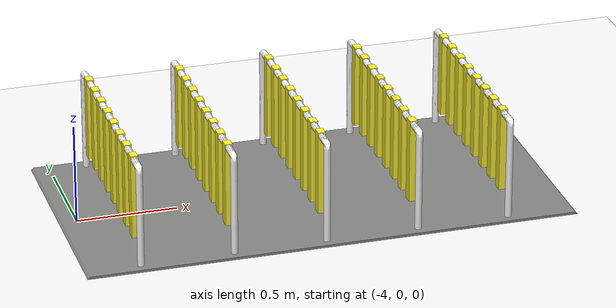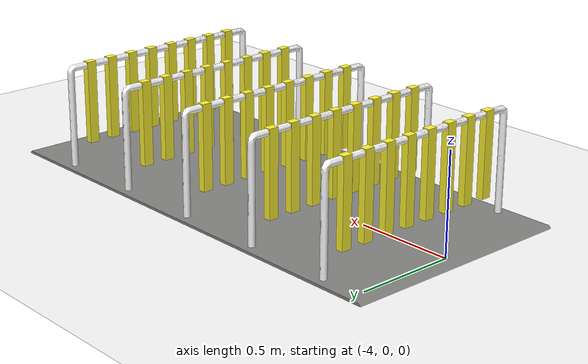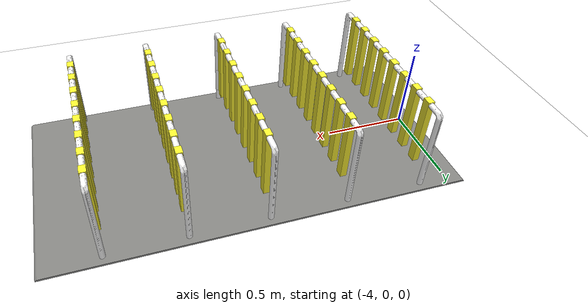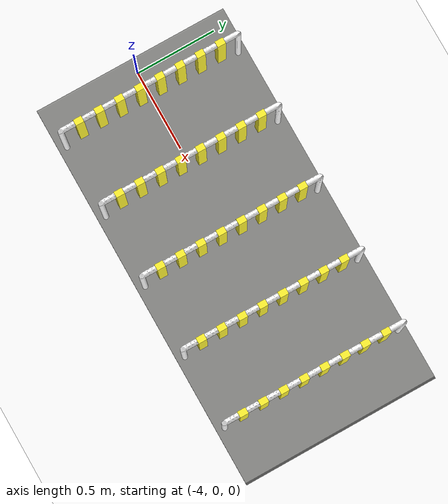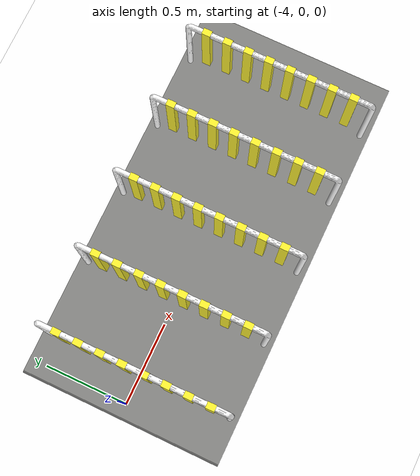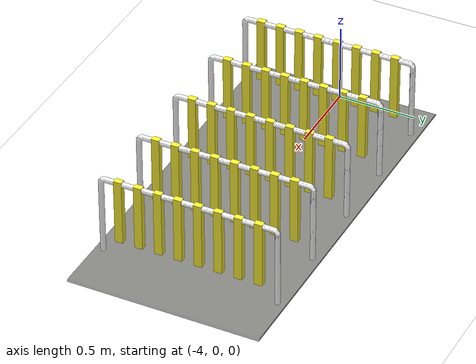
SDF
<sdf version="1.10">
 <world name="cfr_obstacle_course">
  <model name="ground">
   <static>true</static>
   <pose>0.005 -4.540 0 0 0 0</pose>
   <link name="link">
    <collision name="collision">
     <geometry><plane><normal>0 0 1</normal><size>30 24</size></plane></geometry>
     <surface>
      <friction>
       <ode><mu>50</mu></ode>
       <bullet><friction>1</friction><rolling_friction>0.001</rolling_friction></bullet>
      </friction>
     </surface>
    </collision>
    <visual name="visual">
     <geometry><plane><normal>0 0 1</normal><size>30 24</size></plane></geometry>
     <material>
      <diffuse>1 1 1 1</diffuse>
      <pbr>
       <metal>
        <albedo_map>model://cfr_arduino_bridge/materials/asphalt_obstacle.png</albedo_map>
        <roughness>0.95</roughness>
        <metalness>0</metalness>
       </metal>
      </pbr>
     </material>
    </visual>
   </link>
  </model>
  <model name="car_wash">
   <static>true</static>
   <link name="link">
    <visual name="base_visual">
     <pose>-2.8703 -0.0002 0.0000 0.0000 0.0000 0.0000</pose>
     <geometry><mesh><uri>model://cfr_arduino_bridge/meshes/car_wash_base.stl</uri></mesh></geometry>
     <material><diffuse>0.52 0.52 0.51 1</diffuse></material>
    </visual>
    <collision name="base_collision">
     <pose>-2.8703 -0.0002 0.0065 0.0000 0.0000 0.0000</pose>
     <geometry><box><size>2.4384 1.2192 0.0130</size></box></geometry>
    </collision>
    <visual name="arch_0_visual">
     <pose>-3.8198 -0.0002 0.0000 0.0000 0.0000 0.0000</pose>
     <geometry><mesh><uri>model://cfr_arduino_bridge/meshes/car_wash_arch.stl</uri></mesh></geometry>
     <material><diffuse>1 1 1 1</diffuse></material>
    </visual>
    <collision name="upright_0_-1_collision">
     <pose>-3.8198 -0.5757 0.2100 0.0000 0.0000 0.0000</pose>
     <geometry><cylinder><radius>0.0170</radius><length>0.4200</length></cylinder></geometry>
    </collision>
    <collision name="upright_0_1_collision">
     <pose>-3.8198 0.5753 0.2100 0.0000 0.0000 0.0000</pose>
     <geometry><cylinder><radius>0.0170</radius><length>0.4200</length></cylinder></geometry>
    </collision>
    <visual name="strip_0_0_visual">
     <pose>-3.8198 -0.4447 0.3275 0.0000 0.0000 0.0000</pose>
     <geometry><box><size>0.0370 0.0510 0.4250</size></box></geometry>
     <material><diffuse>1.0 0.96 0.19 1</diffuse></material>
    </visual>
    <visual name="strip_0_1_visual">
     <pose>-3.8198 -0.3177 0.3275 0.0000 0.0000 0.0000</pose>
     <geometry><box><size>0.0370 0.0510 0.4250</size></box></geometry>
     <material><diffuse>1.0 0.96 0.19 1</diffuse></material>
    </visual>
    <visual name="strip_0_2_visual">
     <pose>-3.8198 -0.1907 0.3275 0.0000 0.0000 0.0000</pose>
     <geometry><box><size>0.0370 0.0510 0.4250</size></box></geometry>
     <material><diffuse>1.0 0.96 0.19 1</diffuse></material>
    </visual>
    <visual name="strip_0_3_visual">
     <pose>-3.8198 -0.0637 0.3275 0.0000 0.0000 0.0000</pose>
     <geometry><box><size>0.0370 0.0510 0.4250</size></box></geometry>
     <material><diffuse>1.0 0.96 0.19 1</diffuse></material>
    </visual>
    <visual name="strip_0_4_visual">
     <pose>-3.8198 0.0633 0.3275 0.0000 0.0000 0.0000</pose>
     <geometry><box><size>0.0370 0.0510 0.4250</size></box></geometry>
     <material><diffuse>1.0 0.96 0.19 1</diffuse></material>
    </visual>
    <visual name="strip_0_5_visual">
     <pose>-3.8198 0.1903 0.3275 0.0000 0.0000 0.0000</pose>
     <geometry><box><size>0.0370 0.0510 0.4250</size></box></geometry>
     <material><diffuse>1.0 0.96 0.19 1</diffuse></material>
    </visual>
    <visual name="strip_0_6_visual">
     <pose>-3.8198 0.3173 0.3275 0.0000 0.0000 0.0000</pose>
     <geometry><box><size>0.0370 0.0510 0.4250</size></box></geometry>
     <material><diffuse>1.0 0.96 0.19 1</diffuse></material>
    </visual>
    <visual name="strip_0_7_visual">
     <pose>-3.8198 0.4443 0.3275 0.0000 0.0000 0.0000</pose>
     <geometry><box><size>0.0370 0.0510 0.4250</size></box></geometry>
     <material><diffuse>1.0 0.96 0.19 1</diffuse></material>
    </visual>
    <visual name="arch_1_visual">
     <pose>-3.3626 -0.0002 0.0000 0.0000 0.0000 0.0000</pose>
     <geometry><mesh><uri>model://cfr_arduino_bridge/meshes/car_wash_arch.stl</uri></mesh></geometry>
     <material><diffuse>1 1 1 1</diffuse></material>
    </visual>
    <collision name="upright_1_-1_collision">
     <pose>-3.3626 -0.5757 0.2100 0.0000 0.0000 0.0000</pose>
     <geometry><cylinder><radius>0.0170</radius><length>0.4200</length></cylinder></geometry>
    </collision>
    <collision name="upright_1_1_collision">
     <pose>-3.3626 0.5753 0.2100 0.0000 0.0000 0.0000</pose>
     <geometry><cylinder><radius>0.0170</radius><length>0.4200</length></cylinder></geometry>
    </collision>
    <visual name="strip_1_0_visual">
     <pose>-3.3626 -0.4447 0.3275 0.0000 0.0000 0.0000</pose>
     <geometry><box><size>0.0370 0.0510 0.4250</size></box></geometry>
     <material><diffuse>1.0 0.96 0.19 1</diffuse></material>
    </visual>
    <visual name="strip_1_1_visual">
     <pose>-3.3626 -0.3177 0.3275 0.0000 0.0000 0.0000</pose>
     <geometry><box><size>0.0370 0.0510 0.4250</size></box></geometry>
     <material><diffuse>1.0 0.96 0.19 1</diffuse></material>
    </visual>
    <visual name="strip_1_2_visual">
     <pose>-3.3626 -0.1907 0.3275 0.0000 0.0000 0.0000</pose>
     <geometry><box><size>0.0370 0.0510 0.4250</size></box></geometry>
     <material><diffuse>1.0 0.96 0.19 1</diffuse></material>
    </visual>
    <visual name="strip_1_3_visual">
     <pose>-3.3626 -0.0637 0.3275 0.0000 0.0000 0.0000</pose>
     <geometry><box><size>0.0370 0.0510 0.4250</size></box></geometry>
     <material><diffuse>1.0 0.96 0.19 1</diffuse></material>
    </visual>
    <visual name="strip_1_4_visual">
     <pose>-3.3626 0.0633 0.3275 0.0000 0.0000 0.0000</pose>
     <geometry><box><size>0.0370 0.0510 0.4250</size></box></geometry>
     <material><diffuse>1.0 0.96 0.19 1</diffuse></material>
    </visual>
    <visual name="strip_1_5_visual">
     <pose>-3.3626 0.1903 0.3275 0.0000 0.0000 0.0000</pose>
     <geometry><box><size>0.0370 0.0510 0.4250</size></box></geometry>
     <material><diffuse>1.0 0.96 0.19 1</diffuse></material>
    </visual>
    <visual name="strip_1_6_visual">
     <pose>-3.3626 0.3173 0.3275 0.0000 0.0000 0.0000</pose>
     <geometry><box><size>0.0370 0.0510 0.4250</size></box></geometry>
     <material><diffuse>1.0 0.96 0.19 1</diffuse></material>
    </visual>
    <visual name="strip_1_7_visual">
     <pose>-3.3626 0.4443 0.3275 0.0000 0.0000 0.0000</pose>
     <geometry><box><size>0.0370 0.0510 0.4250</size></box></geometry>
     <material><diffuse>1.0 0.96 0.19 1</diffuse></material>
    </visual>
    <visual name="arch_2_visual">
     <pose>-2.9054 -0.0002 0.0000 0.0000 0.0000 0.0000</pose>
     <geometry><mesh><uri>model://cfr_arduino_bridge/meshes/car_wash_arch.stl</uri></mesh></geometry>
     <material><diffuse>1 1 1 1</diffuse></material>
    </visual>
    <collision name="upright_2_-1_collision">
     <pose>-2.9054 -0.5757 0.2100 0.0000 0.0000 0.0000</pose>
     <geometry><cylinder><radius>0.0170</radius><length>0.4200</length></cylinder></geometry>
    </collision>
    <collision name="upright_2_1_collision">
     <pose>-2.9054 0.5753 0.2100 0.0000 0.0000 0.0000</pose>
     <geometry><cylinder><radius>0.0170</radius><length>0.4200</length></cylinder></geometry>
    </collision>
    <visual name="strip_2_0_visual">
     <pose>-2.9054 -0.4447 0.3275 0.0000 0.0000 0.0000</pose>
     <geometry><box><size>0.0370 0.0510 0.4250</size></box></geometry>
     <material><diffuse>1.0 0.96 0.19 1</diffuse></material>
    </visual>
    <visual name="strip_2_1_visual">
     <pose>-2.9054 -0.3177 0.3275 0.0000 0.0000 0.0000</pose>
     <geometry><box><size>0.0370 0.0510 0.4250</size></box></geometry>
     <material><diffuse>1.0 0.96 0.19 1</diffuse></material>
    </visual>
    <visual name="strip_2_2_visual">
     <pose>-2.9054 -0.1907 0.3275 0.0000 0.0000 0.0000</pose>
     <geometry><box><size>0.0370 0.0510 0.4250</size></box></geometry>
     <material><diffuse>1.0 0.96 0.19 1</diffuse></material>
    </visual>
    <visual name="strip_2_3_visual">
     <pose>-2.9054 -0.0637 0.3275 0.0000 0.0000 0.0000</pose>
     <geometry><box><size>0.0370 0.0510 0.4250</size></box></geometry>
     <material><diffuse>1.0 0.96 0.19 1</diffuse></material>
    </visual>
    <visual name="strip_2_4_visual">
     <pose>-2.9054 0.0633 0.3275 0.0000 0.0000 0.0000</pose>
     <geometry><box><size>0.0370 0.0510 0.4250</size></box></geometry>
     <material><diffuse>1.0 0.96 0.19 1</diffuse></material>
    </visual>
    <visual name="strip_2_5_visual">
     <pose>-2.9054 0.1903 0.3275 0.0000 0.0000 0.0000</pose>
     <geometry><box><size>0.0370 0.0510 0.4250</size></box></geometry>
     <material><diffuse>1.0 0.96 0.19 1</diffuse></material>
    </visual>
    <visual name="strip_2_6_visual">
     <pose>-2.9054 0.3173 0.3275 0.0000 0.0000 0.0000</pose>
     <geometry><box><size>0.0370 0.0510 0.4250</size></box></geometry>
     <material><diffuse>1.0 0.96 0.19 1</diffuse></material>
    </visual>
    <visual name="strip_2_7_visual">
     <pose>-2.9054 0.4443 0.3275 0.0000 0.0000 0.0000</pose>
     <geometry><box><size>0.0370 0.0510 0.4250</size></box></geometry>
     <material><diffuse>1.0 0.96 0.19 1</diffuse></material>
    </visual>
    <visual name="arch_3_visual">
     <pose>-2.4482 -0.0002 0.0000 0.0000 0.0000 0.0000</pose>
     <geometry><mesh><uri>model://cfr_arduino_bridge/meshes/car_wash_arch.stl</uri></mesh></geometry>
     <material><diffuse>1 1 1 1</diffuse></material>
    </visual>
    <collision name="upright_3_-1_collision">
     <pose>-2.4482 -0.5757 0.2100 0.0000 0.0000 0.0000</pose>
     <geometry><cylinder><radius>0.0170</radius><length>0.4200</length></cylinder></geometry>
    </collision>
    <collision name="upright_3_1_collision">
     <pose>-2.4482 0.5753 0.2100 0.0000 0.0000 0.0000</pose>
     <geometry><cylinder><radius>0.0170</radius><length>0.4200</length></cylinder></geometry>
    </collision>
    <visual name="strip_3_0_visual">
     <pose>-2.4482 -0.4447 0.3275 0.0000 0.0000 0.0000</pose>
     <geometry><box><size>0.0370 0.0510 0.4250</size></box></geometry>
     <material><diffuse>1.0 0.96 0.19 1</diffuse></material>
    </visual>
    <visual name="strip_3_1_visual">
     <pose>-2.4482 -0.3177 0.3275 0.0000 0.0000 0.0000</pose>
     <geometry><box><size>0.0370 0.0510 0.4250</size></box></geometry>
     <material><diffuse>1.0 0.96 0.19 1</diffuse></material>
    </visual>
    <visual name="strip_3_2_visual">
     <pose>-2.4482 -0.1907 0.3275 0.0000 0.0000 0.0000</pose>
     <geometry><box><size>0.0370 0.0510 0.4250</size></box></geometry>
     <material><diffuse>1.0 0.96 0.19 1</diffuse></material>
    </visual>
    <visual name="strip_3_3_visual">
     <pose>-2.4482 -0.0637 0.3275 0.0000 0.0000 0.0000</pose>
     <geometry><box><size>0.0370 0.0510 0.4250</size></box></geometry>
     <material><diffuse>1.0 0.96 0.19 1</diffuse></material>
    </visual>
    <visual name="strip_3_4_visual">
     <pose>-2.4482 0.0633 0.3275 0.0000 0.0000 0.0000</pose>
     <geometry><box><size>0.0370 0.0510 0.4250</size></box></geometry>
     <material><diffuse>1.0 0.96 0.19 1</diffuse></material>
    </visual>
    <visual name="strip_3_5_visual">
     <pose>-2.4482 0.1903 0.3275 0.0000 0.0000 0.0000</pose>
     <geometry><box><size>0.0370 0.0510 0.4250</size></box></geometry>
     <material><diffuse>1.0 0.96 0.19 1</diffuse></material>
    </visual>
    <visual name="strip_3_6_visual">
     <pose>-2.4482 0.3173 0.3275 0.0000 0.0000 0.0000</pose>
     <geometry><box><size>0.0370 0.0510 0.4250</size></box></geometry>
     <material><diffuse>1.0 0.96 0.19 1</diffuse></material>
    </visual>
    <visual name="strip_3_7_visual">
     <pose>-2.4482 0.4443 0.3275 0.0000 0.0000 0.0000</pose>
     <geometry><box><size>0.0370 0.0510 0.4250</size></box></geometry>
     <material><diffuse>1.0 0.96 0.19 1</diffuse></material>
    </visual>
    <visual name="arch_4_visual">
     <pose>-1.9910 -0.0002 0.0000 0.0000 0.0000 0.0000</pose>
     <geometry><mesh><uri>model://cfr_arduino_bridge/meshes/car_wash_arch.stl</uri></mesh></geometry>
     <material><diffuse>1 1 1 1</diffuse></material>
    </visual>
    <collision name="upright_4_-1_collision">
     <pose>-1.9910 -0.5757 0.2100 0.0000 0.0000 0.0000</pose>
     <geometry><cylinder><radius>0.0170</radius><length>0.4200</length></cylinder></geometry>
    </collision>
    <collision name="upright_4_1_collision">
     <pose>-1.9910 0.5753 0.2100 0.0000 0.0000 0.0000</pose>
     <geometry><cylinder><radius>0.0170</radius><length>0.4200</length></cylinder></geometry>
    </collision>
    <visual name="strip_4_0_visual">
     <pose>-1.9910 -0.4447 0.3275 0.0000 0.0000 0.0000</pose>
     <geometry><box><size>0.0370 0.0510 0.4250</size></box></geometry>
     <material><diffuse>1.0 0.96 0.19 1</diffuse></material>
    </visual>
    <visual name="strip_4_1_visual">
     <pose>-1.9910 -0.3177 0.3275 0.0000 0.0000 0.0000</pose>
     <geometry><box><size>0.0370 0.0510 0.4250</size></box></geometry>
     <material><diffuse>1.0 0.96 0.19 1</diffuse></material>
    </visual>
    <visual name="strip_4_2_visual">
     <pose>-1.9910 -0.1907 0.3275 0.0000 0.0000 0.0000</pose>
     <geometry><box><size>0.0370 0.0510 0.4250</size></box></geometry>
     <material><diffuse>1.0 0.96 0.19 1</diffuse></material>
    </visual>
    <visual name="strip_4_3_visual">
     <pose>-1.9910 -0.0637 0.3275 0.0000 0.0000 0.0000</pose>
     <geometry><box><size>0.0370 0.0510 0.4250</size></box></geometry>
     <material><diffuse>1.0 0.96 0.19 1</diffuse></material>
    </visual>
    <visual name="strip_4_4_visual">
     <pose>-1.9910 0.0633 0.3275 0.0000 0.0000 0.0000</pose>
     <geometry><box><size>0.0370 0.0510 0.4250</size></box></geometry>
     <material><diffuse>1.0 0.96 0.19 1</diffuse></material>
    </visual>
    <visual name="strip_4_5_visual">
     <pose>-1.9910 0.1903 0.3275 0.0000 0.0000 0.0000</pose>
     <geometry><box><size>0.0370 0.0510 0.4250</size></box></geometry>
     <material><diffuse>1.0 0.96 0.19 1</diffuse></material>
    </visual>
    <visual name="strip_4_6_visual">
     <pose>-1.9910 0.3173 0.3275 0.0000 0.0000 0.0000</pose>
     <geometry><box><size>0.0370 0.0510 0.4250</size></box></geometry>
     <material><diffuse>1.0 0.96 0.19 1</diffuse></material>
    </visual>
    <visual name="strip_4_7_visual">
     <pose>-1.9910 0.4443 0.3275 0.0000 0.0000 0.0000</pose>
     <geometry><box><size>0.0370 0.0510 0.4250</size></box></geometry>
     <material><diffuse>1.0 0.96 0.19 1</diffuse></material>
    </visual>
   </link>
  </model>
 </world>
</sdf>
